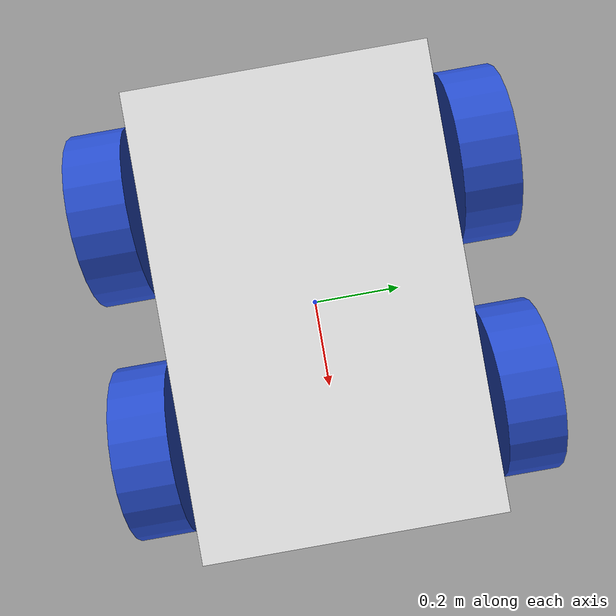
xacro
<?xml version="1.0"?>
<robot xmlns:xacro="http://www.ros.org/wiki/xacro" >
    <!-- base dimensions -->
    <xacro:property name="base_x_size" value="1.0" />
    <xacro:property name="base_y_size" value="0.65" />
    <xacro:property name="base_z_size" value="0.1" />

    <!-- wheel properties -->
    <xacro:property name="wheel_length" value="0.115" />
    <xacro:property name="wheel_radius" value="0.183" />

    <!-- material density -->
    <xacro:property name="base_density" value="1500.0" />
    <xacro:property name="wheel_density" value="400.0" />

    <!-- base and wheel mass -->
    <xacro:property name="base_mass" value="${base_density*base_x_size*base_y_size*base_z_size}" />
    <xacro:property name="wheel_mass" value="${wheel_density*pi*wheel_radius*wheel_radius*wheel_length}" />

    <!-- base link -->
    <link name="base_link">
    </link>

    <!-- base_footprint link -->
    <link name="base_footprint">
    </link>

    <joint name="base_footprint_joint" type="fixed">
        <origin xyz="0 0 ${wheel_radius}" rpy="0 0 0" />
        <parent link="base_footprint"/>
        <child link="base_link" />
    </joint>

    <!-- chassis -->
    <link name="chassis">
        <visual>
        <geometry>
            <box size="${base_x_size} ${base_y_size} ${base_z_size}"/>
        </geometry>
        <material name="white"/>
        </visual>
        <collision>
        <geometry>
            <box size="${base_x_size} ${base_y_size} ${base_z_size}"/>
        </geometry>
        </collision>
        <xacro:inertial_box mass="${base_mass}" x="${base_x_size}" y="${base_y_size}" z="${base_z_size}">
            <origin xyz="0 0 0" rpy="0 0 0"/>
        </xacro:inertial_box>
    </link>

    <joint name="chassis_joint" type="fixed">
        <parent link="base_link"/>
        <child link="chassis"/>
        <origin xyz="0 0 0"/>
    </joint>

    <gazebo reference="chassis">
        <material name="gazebo_white"/>
    </gazebo>

    <!-- wheels -->
    <xacro:macro name="wheel" params="prefix x_reflect y_reflect">
        <link name="${prefix}_link">
            <visual>
                <geometry>
                    <cylinder length="${wheel_length}" radius="${wheel_radius}" />
                </geometry>
                <material name="blue"/>
            </visual>

            <collision>
                <geometry>
                    <sphere radius="${wheel_radius}" />
                </geometry>
            </collision>
            <xacro:inertial_cylinder mass="${wheel_mass}" length="${wheel_length}" radius="${wheel_radius}">
                <origin xyz="0 0 0" rpy="0 0 0"/>
            </xacro:inertial_cylinder>
        </link>

        <joint name="${prefix}_joint" type="continuous">
            <parent link="base_link"/>
            <child link="${prefix}_link"/>
            <origin xyz="${x_reflect*(base_x_size/4)} ${y_reflect*(base_y_size + wheel_length)/2} 0" rpy="${-1*y_reflect*pi/2} 0 0"/>
            <axis xyz="0 0 ${y_reflect}"/>
        </joint>

        <gazebo reference="${prefix}_link">
            <material name="gazebo_blue"/>
        </gazebo>
    </xacro:macro>

    <xacro:wheel prefix="front_left_wheel" x_reflect="1" y_reflect="1" />
    <xacro:wheel prefix="front_right_wheel" x_reflect="1" y_reflect="-1" />
    <xacro:wheel prefix="rear_left_wheel" x_reflect="-1" y_reflect="1" />
    <xacro:wheel prefix="rear_right_wheel" x_reflect="-1" y_reflect="-1" />

</robot>
